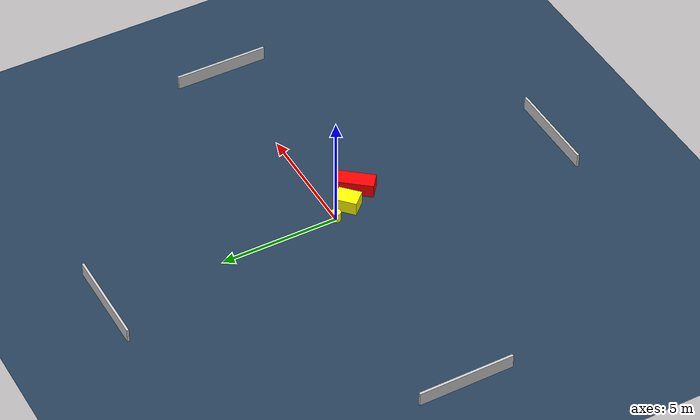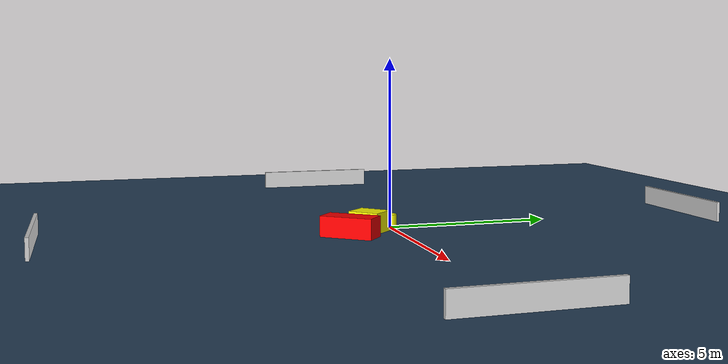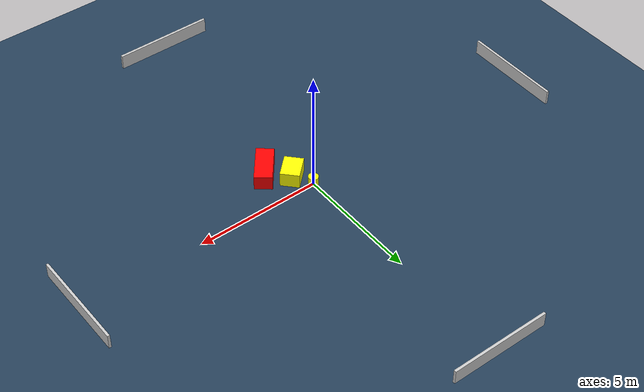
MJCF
<?xml version="1.0" ?>
<mujoco model="generated_environment">
  <option timestep="0.01" integrator="RK4" cone="elliptic"/>
  <default>
    <geom density="1"/>
  </default>
  <asset>
    <texture builtin="gradient" height="3072" name="skybox" rgb1="0.3 0.5 0.7" rgb2="0 0 0" type="skybox" width="512"/>
    <texture builtin="checker" height="300" name="groundplane" rgb1="0.2 0.3 0.4" rgb2="0.1 0.2 0.3" type="2d" width="300"/>
    <material name="groundplane" reflectance="0.2" texrepeat="5 5" texture="groundplane"/>
  </asset>
  <worldbody>
    <light dir="0 0 -1" directional="true" pos="0 0 1.5"/>
    <geom condim="3" friction="0.5 0.005 0.001" material="groundplane" name="floor" pos="0 0 0" size="0 0 0.05" type="plane"/>
    <body name="walls">
      <geom name="wall_1" condim="4" pos="-10.0 0.0 0.3" rgba="0.800000011920929 0.800000011920929 0.800000011920929 1.0" size="0.05 2.0 0.3" type="box"/>
      <geom name="wall_2" condim="4" pos="10.0 0.0 0.3" rgba="0.800000011920929 0.800000011920929 0.800000011920929 1.0" size="0.05 2.0 0.3" type="box"/>
      <geom name="wall_3" condim="4" pos="0.0 -10.0 0.3" rgba="0.800000011920929 0.800000011920929 0.800000011920929 1.0" size="2.0 0.05 0.3" type="box"/>
      <geom name="wall_4" condim="4" pos="0.0 10.0 0.3" rgba="0.800000011920929 0.800000011920929 0.800000011920929 1.0" size="2.0 0.05 0.3" type="box"/>
    </body>
    <body name="robot">
      <joint name="joint_x" type="slide" pos="0 0 0" axis="1 0 0"/>
      <joint name="joint_y" type="slide" pos="0 0 0" axis="0 1 0"/>
      <geom name="robot" type="cylinder" pos="0.0 0.0 0.2" size="0.2 0.2 0.0" mass="5.0" friction="1.0 0.005 0.0001" condim="4" rgba="1.0 1.0 0.0 1.0"/>
    </body>
    <body name="obstacle_1_movable">
      <geom name="obstacle_1_movable" condim="4" pos="0.4190880381920375 -0.7527779309207687 0.3" euler="0 0 223.0631013546371" friction="0.0 0.005 0.001" rgba="1.0 1.0 0.0 1.0" size="0.4792122950024318 0.37224798974847206 0.3" type="box" mass="0.1"/>
      <joint type="free"/>
    </body>
    <body name="obstacle_2_static">
      <geom name="obstacle_2_static" condim="4" pos="1.1302058064022278 -1.5162698943074333 0.3" euler="0 0 51.053520871532115" friction="0.0 0.005 0.001" rgba="1.0 0.0 0.0 1.0" size="0.7806192961918679 0.34644071852389624 0.3" type="box"/>
    </body>
  </worldbody>
  <actuator>
    <motor name="actuator_x" joint="joint_x" gear="1" ctrlrange="-1 1"/>
    <motor name="actuator_y" joint="joint_y" gear="1" ctrlrange="-1 1"/>
  </actuator>
</mujoco>
